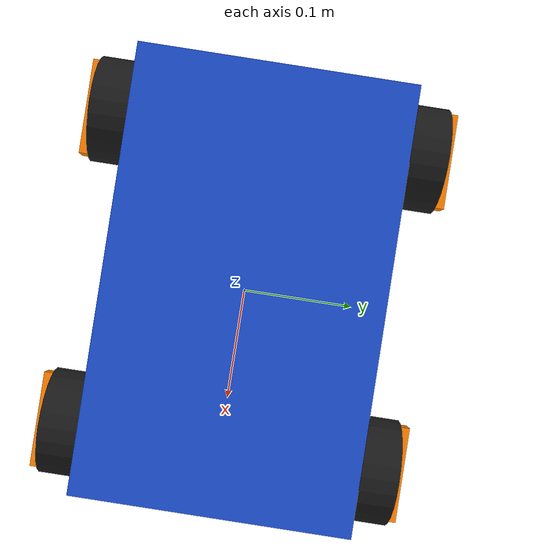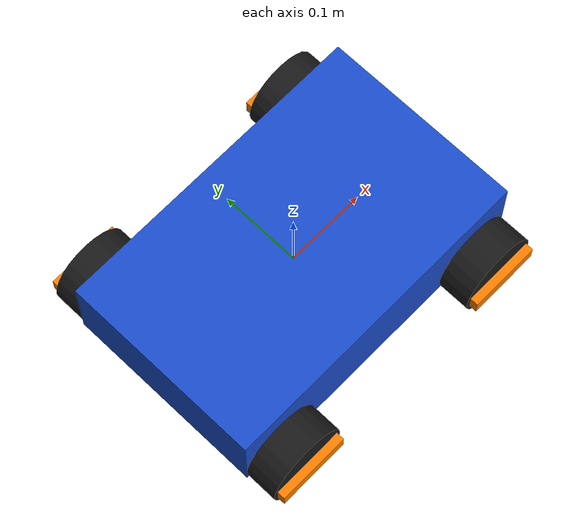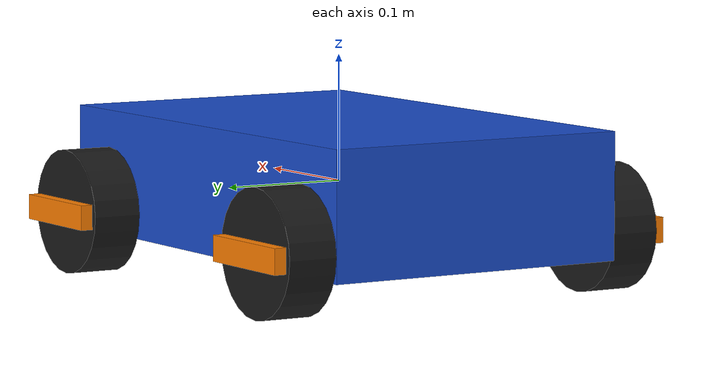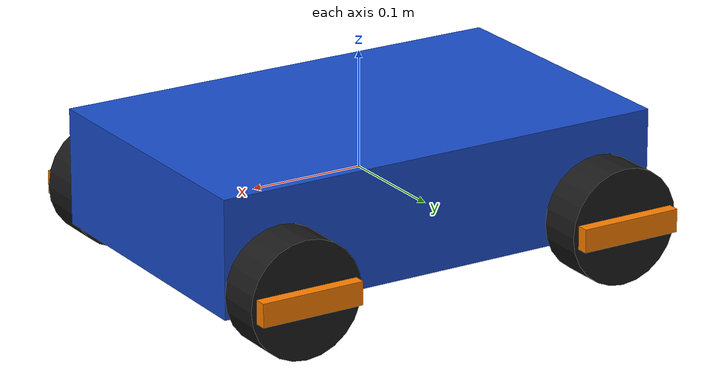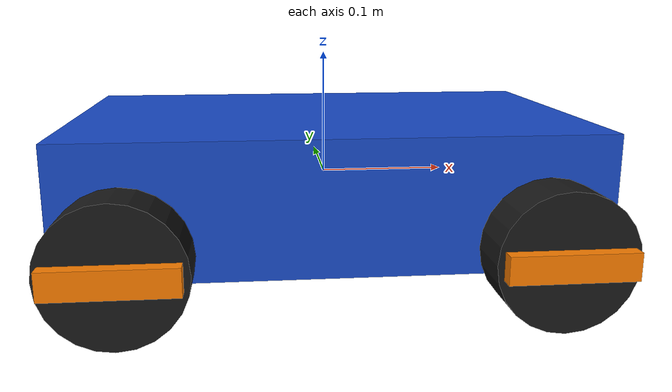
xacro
<?xml version="1.0"?>
<robot xmlns:xacro="http://www.ros.org/wiki/xacro" name="ugv">

  <!-- Chassis dimensions (metres) -->
  <xacro:property name="chassis_length" value="0.40"/>
  <xacro:property name="chassis_width"  value="0.25"/>
  <xacro:property name="chassis_height" value="0.10"/>

  <!-- Wheel dimensions and placement (metres) -->
  <xacro:property name="wheel_radius" value="0.05"/>
  <xacro:property name="wheel_width"  value="0.04"/>
  <xacro:property name="wheel_x"      value="0.15"/>
  <xacro:property name="wheel_y"      value="${chassis_width/2 + wheel_width/2}"/>
  <xacro:property name="wheel_z"      value="-0.03"/>

  <!-- Colours -->
  <material name="chassis_blue">
    <color rgba="0.1 0.3 0.8 1.0"/>
  </material>
  <material name="wheel_black">
    <color rgba="0.1 0.1 0.1 1.0"/>
  </material>
  <material name="wheel_marker">
    <color rgba="1.0 0.5 0.0 1.0"/>
  </material>

  <!-- Chassis -->
  <link name="base_link">
    <visual>
      <geometry>
        <box size="${chassis_length} ${chassis_width} ${chassis_height}"/>
      </geometry>
      <material name="chassis_blue"/>
    </visual>
  </link>

  <!-- Wheel template: one link + one joint -->
  <xacro:macro name="wheel" params="name x y">
    <link name="${name}_wheel">
      <!-- Tyre -->
      <visual>
        <origin xyz="0 0 0" rpy="${pi/2} 0 0"/>
        <geometry>
          <cylinder radius="${wheel_radius}" length="${wheel_width}"/>
        </geometry>
        <material name="wheel_black"/>
      </visual>
      <!-- Orange bar sticking out of both faces so rotation is visible -->
      <visual>
        <origin xyz="0 0 0" rpy="0 0 0"/>
        <geometry>
          <box size="${wheel_radius*1.8} ${wheel_width+0.02} 0.02"/>
        </geometry>
        <material name="wheel_marker"/>
      </visual>
    </link>

    <joint name="${name}_wheel_joint" type="continuous">
      <parent link="base_link"/>
      <child link="${name}_wheel"/>
      <origin xyz="${x} ${y} ${wheel_z}" rpy="0 0 0"/>
      <axis xyz="0 1 0"/>
    </joint>
  </xacro:macro>

  <!-- Create the four wheels from the template -->
  <xacro:wheel name="front_left"  x="${wheel_x}"  y="${wheel_y}"/>
  <xacro:wheel name="front_right" x="${wheel_x}"  y="${-wheel_y}"/>
  <xacro:wheel name="rear_left"   x="${-wheel_x}" y="${wheel_y}"/>
  <xacro:wheel name="rear_right"  x="${-wheel_x}" y="${-wheel_y}"/>

</robot>
